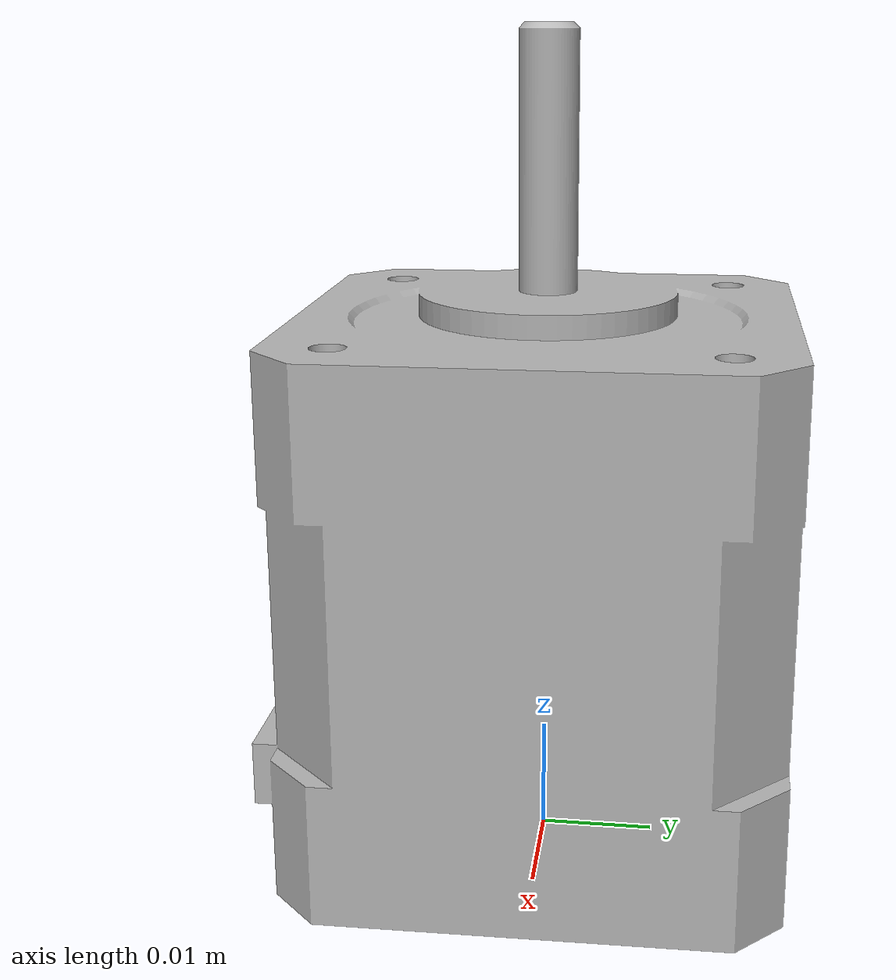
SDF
<?xml version="1.0" ?>
<sdf version="1.5">
  <model name="Nema17">
    <static>false</static>
    <link name="link">
      <collision name="collision">
        <geometry>
          <mesh>
            <scale>1 1 1</scale>
            <uri>model://Nema/Nema17/Nema17.dae</uri>
          </mesh>
        </geometry>
      </collision>
      <visual name="visual">
        <geometry>
          <mesh>
            <scale>1 1 1</scale>
            <uri>model://Nema/Nema17/Nema17.dae</uri>
          </mesh>
        </geometry>
      </visual>
    </link>
  </model>
</sdf>
